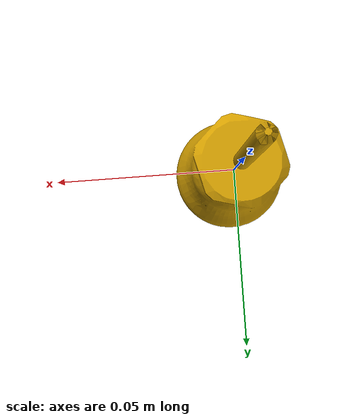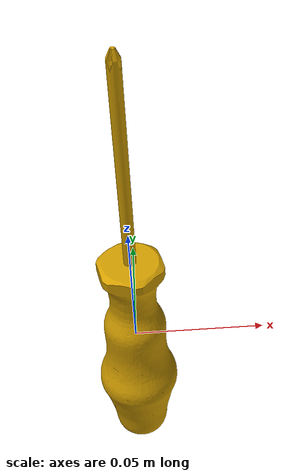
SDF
<?xml version="1.0"?>
<sdf version="1.7">
  <model name="phillips_screwdriver_80mm_bright">
    <pose>0 0 0 0 0 0</pose>
    <static>false</static>
    <link name="link">
      <!-- link frame = tool CoM; Z = long axis (+ toward tool end), X = forward, Y = Z x X -->
      <inertial>
        <pose>0 0 0 0 0 0</pose>
        <mass>0.063936</mass>
        <inertia>
          <ixx>1.092029e-04</ixx>
          <ixy>3.055672e-11</ixy>
          <ixz>-4.261025e-10</ixz>
          <iyy>1.092030e-04</iyy>
          <iyz>-1.830888e-09</iyz>
          <izz>4.336115e-06</izz>
        </inertia>
      </inertial>
      <collision name="collision">
        <geometry>
          <mesh>
            <uri>model://phillips_screwdriver_80mm/meshes/phillips_screwdriver_80mm.dae</uri>
          </mesh>
        </geometry>
      </collision>
      <visual name="visual">
        <geometry>
          <mesh>
            <uri>model://phillips_screwdriver_80mm/meshes/phillips_screwdriver_80mm.dae</uri>
          </mesh>
        </geometry>
        <material>
          <ambient>0.369 0.277 0.000 1.0</ambient>
          <diffuse>0.820 0.615 0.000 1.0</diffuse>
          <specular>0.85 0.85 0.85 1.0</specular>
          <emissive>0 0 0 1.0</emissive>
        </material>
      </visual>
    </link>
  </model>
</sdf>
